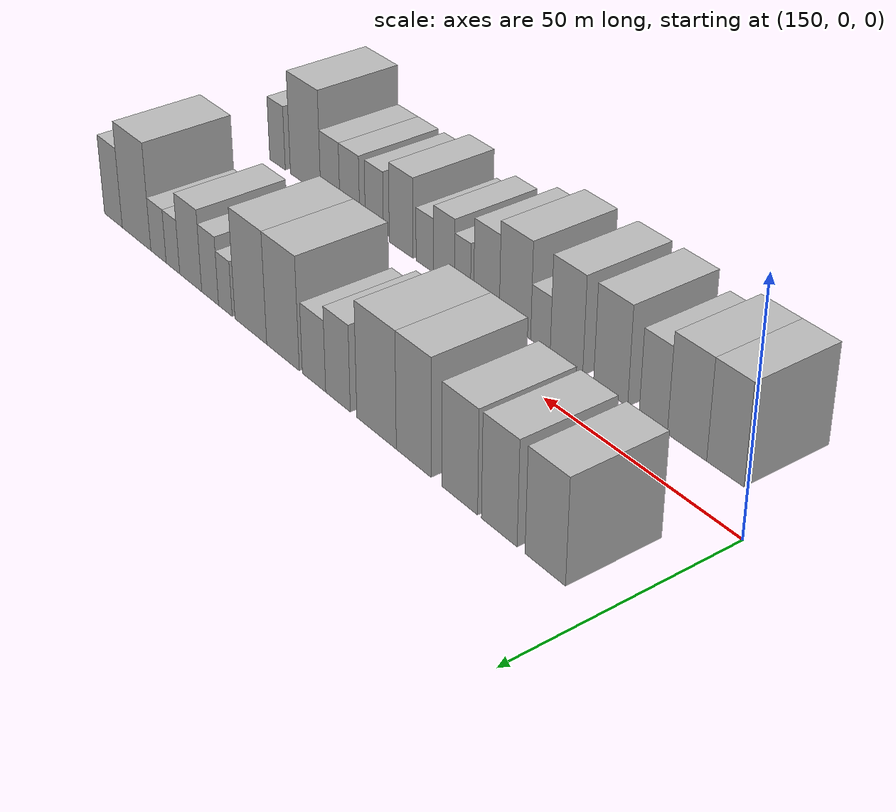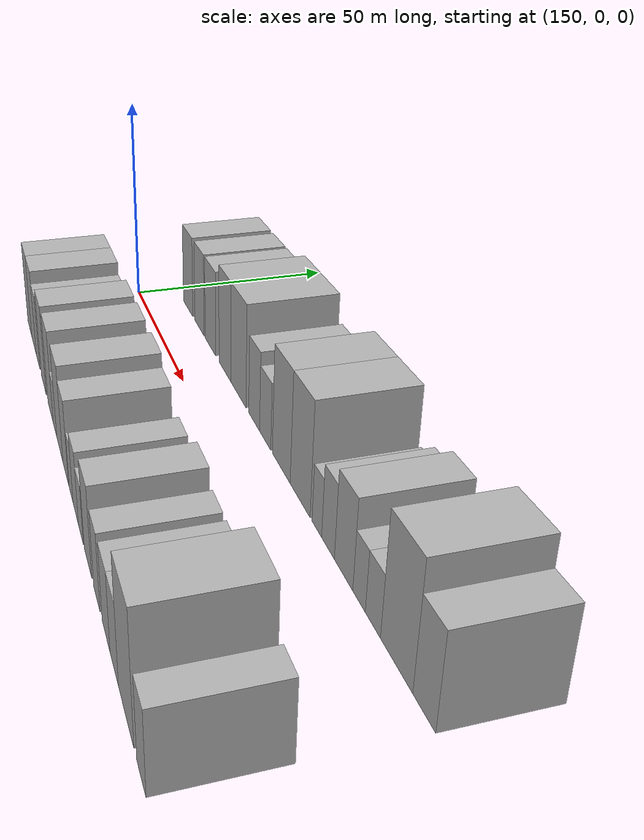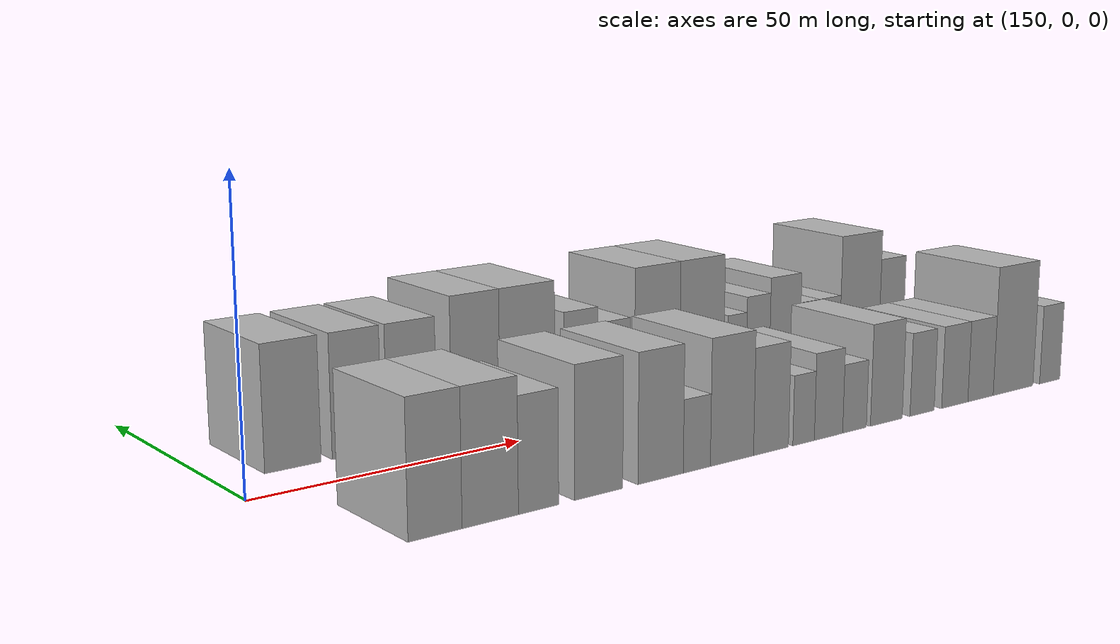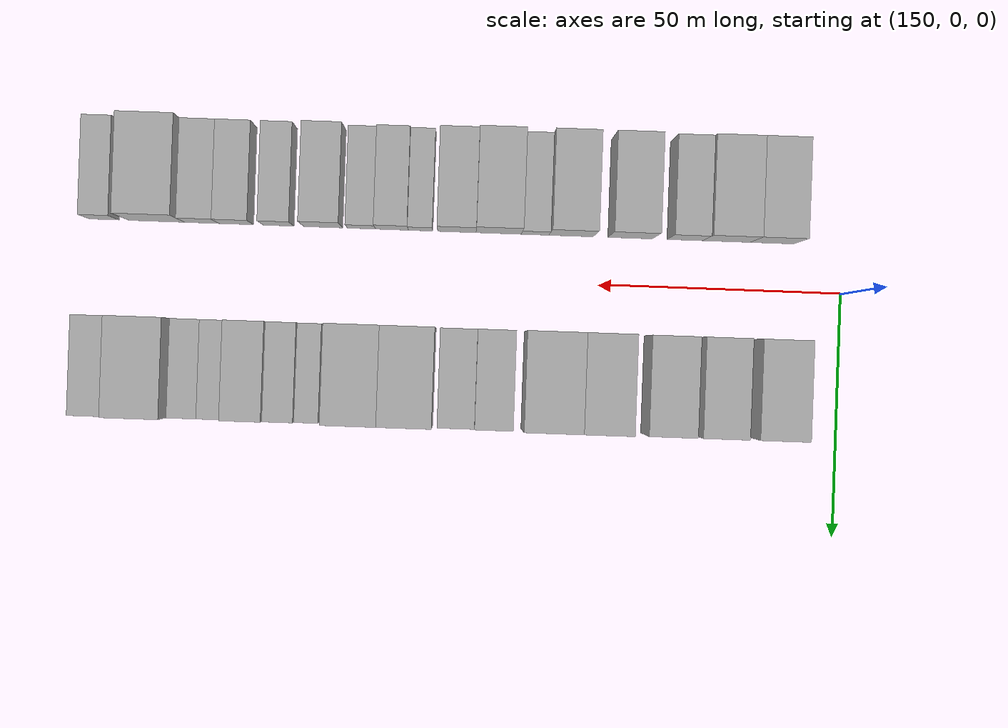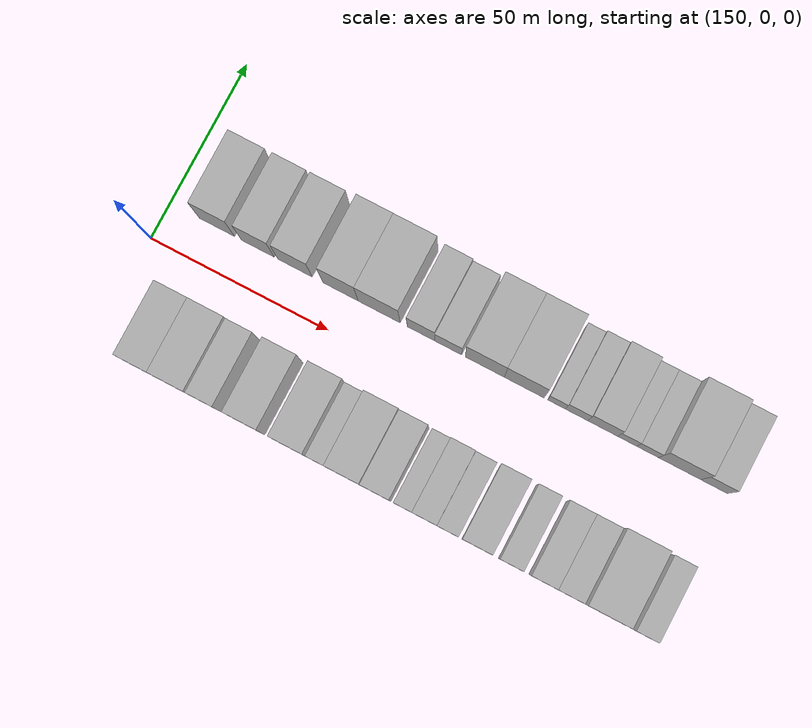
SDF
<sdf version="1.6">
 <world name="default">
  <model name="building_15">
   <static>1</static>
   <pose>163.2316 20.0000 0 0.000000 0.000000 1.570796</pose>
   <link name="link">
    <pose>0 0 10.50 0 0 0</pose>
    <collision name="collision"><geometry><box><size>20.0000 9.9971 21.0000</size></box></geometry></collision>
    <visual name="visual">
     <cast_shadows>0</cast_shadows>
     <geometry><box><size>20.0000 9.9971 21.0000</size></box></geometry>
     <material>
      <script>
       <uri>model://HANNAS_wall/materials/scripts</uri>
       <uri>model://HANNAS_wall/materials/textures</uri>
       <name>vrc/HANNAS_wall</name>
      </script>
     </material>
    </visual>
   </link>
  </model>
  <model name="building_16">
   <static>1</static>
   <pose>174.8527 20.0000 0 0.000000 0.000000 1.570796</pose>
   <link name="link">
    <pose>0 0 10.50 0 0 0</pose>
    <collision name="collision"><geometry><box><size>20.0000 9.2451 21.0000</size></box></geometry></collision>
    <visual name="visual">
     <cast_shadows>0</cast_shadows>
     <geometry><box><size>20.0000 9.2451 21.0000</size></box></geometry>
     <material>
      <script>
       <uri>model://HANNAS_wall/materials/scripts</uri>
       <uri>model://HANNAS_wall/materials/textures</uri>
       <name>vrc/HANNAS_wall</name>
      </script>
     </material>
    </visual>
   </link>
  </model>
  <model name="building_17">
   <static>1</static>
   <pose>185.3069 20.0000 0 0.000000 0.000000 1.570796</pose>
   <link name="link">
    <pose>0 0 10.50 0 0 0</pose>
    <collision name="collision"><geometry><box><size>20.0000 9.6634 21.0000</size></box></geometry></collision>
    <visual name="visual">
     <cast_shadows>0</cast_shadows>
     <geometry><box><size>20.0000 9.6634 21.0000</size></box></geometry>
     <material>
      <script>
       <uri>model://HANNAS_wall/materials/scripts</uri>
       <uri>model://HANNAS_wall/materials/textures</uri>
       <name>vrc/HANNAS_wall</name>
      </script>
     </material>
    </visual>
   </link>
  </model>
  <model name="building_18">
   <static>1</static>
   <pose>198.1085 20.0000 0 0.000000 0.000000 1.570796</pose>
   <link name="link">
    <pose>0 0 12.00 0 0 0</pose>
    <collision name="collision"><geometry><box><size>20.0000 9.9397 24.0000</size></box></geometry></collision>
    <visual name="visual">
     <cast_shadows>0</cast_shadows>
     <geometry><box><size>20.0000 9.9397 24.0000</size></box></geometry>
     <material>
      <script>
       <uri>model://HANNAS_wall/materials/scripts</uri>
       <uri>model://HANNAS_wall/materials/textures</uri>
       <name>vrc/HANNAS_wall</name>
      </script>
     </material>
    </visual>
   </link>
  </model>
  <model name="building_19">
   <static>1</static>
   <pose>208.9604 20.0000 0 0.000000 0.000000 1.570796</pose>
   <link name="link">
    <pose>0 0 12.00 0 0 0</pose>
    <collision name="collision"><geometry><box><size>20.0000 11.7642 24.0000</size></box></geometry></collision>
    <visual name="visual">
     <cast_shadows>0</cast_shadows>
     <geometry><box><size>20.0000 11.7642 24.0000</size></box></geometry>
     <material>
      <script>
       <uri>model://HANNAS_wall/materials/scripts</uri>
       <uri>model://HANNAS_wall/materials/textures</uri>
       <name>vrc/HANNAS_wall</name>
      </script>
     </material>
    </visual>
   </link>
  </model>
  <model name="building_20">
   <static>1</static>
   <pose>220.6789 20.0000 0 0.000000 0.000000 1.570796</pose>
   <link name="link">
    <pose>0 0 9.00 0 0 0</pose>
    <collision name="collision"><geometry><box><size>20.0000 7.6727 18.0000</size></box></geometry></collision>
    <visual name="visual">
     <cast_shadows>0</cast_shadows>
     <geometry><box><size>20.0000 7.6727 18.0000</size></box></geometry>
     <material>
      <script>
       <uri>model://HANNAS_wall/materials/scripts</uri>
       <uri>model://HANNAS_wall/materials/textures</uri>
       <name>vrc/HANNAS_wall</name>
      </script>
     </material>
    </visual>
   </link>
  </model>
  <model name="building_21">
   <static>1</static>
   <pose>228.2584 20.0000 0 0.000000 0.000000 1.570796</pose>
   <link name="link">
    <pose>0 0 7.50 0 0 0</pose>
    <collision name="collision"><geometry><box><size>20.0000 7.4864 15.0000</size></box></geometry></collision>
    <visual name="visual">
     <cast_shadows>0</cast_shadows>
     <geometry><box><size>20.0000 7.4864 15.0000</size></box></geometry>
     <material>
      <script>
       <uri>model://HANNAS_wall/materials/scripts</uri>
       <uri>model://HANNAS_wall/materials/textures</uri>
       <name>vrc/HANNAS_wall</name>
      </script>
     </material>
    </visual>
   </link>
  </model>
  <model name="building_22">
   <static>1</static>
   <pose>238.4389 20.0000 0 0.000000 0.000000 1.570796</pose>
   <link name="link">
    <pose>0 0 12.00 0 0 0</pose>
    <collision name="collision"><geometry><box><size>20.0000 10.8745 24.0000</size></box></geometry></collision>
    <visual name="visual">
     <cast_shadows>0</cast_shadows>
     <geometry><box><size>20.0000 10.8745 24.0000</size></box></geometry>
     <material>
      <script>
       <uri>model://HANNAS_wall/materials/scripts</uri>
       <uri>model://HANNAS_wall/materials/textures</uri>
       <name>vrc/HANNAS_wall</name>
      </script>
     </material>
    </visual>
   </link>
  </model>
  <model name="building_23">
   <static>1</static>
   <pose>249.3946 20.0000 0 0.000000 0.000000 1.570796</pose>
   <link name="link">
    <pose>0 0 12.00 0 0 0</pose>
    <collision name="collision"><geometry><box><size>20.0000 11.0370 24.0000</size></box></geometry></collision>
    <visual name="visual">
     <cast_shadows>0</cast_shadows>
     <geometry><box><size>20.0000 11.0370 24.0000</size></box></geometry>
     <material>
      <script>
       <uri>model://HANNAS_wall/materials/scripts</uri>
       <uri>model://HANNAS_wall/materials/textures</uri>
       <name>vrc/HANNAS_wall</name>
      </script>
     </material>
    </visual>
   </link>
  </model>
  <model name="building_24">
   <static>1</static>
   <pose>258.3579 20.0000 0 0.000000 0.000000 1.570796</pose>
   <link name="link">
    <pose>0 0 6.00 0 0 0</pose>
    <collision name="collision"><geometry><box><size>20.0000 4.8894 12.0000</size></box></geometry></collision>
    <visual name="visual">
     <cast_shadows>0</cast_shadows>
     <geometry><box><size>20.0000 4.8894 12.0000</size></box></geometry>
     <material>
      <script>
       <uri>model://HANNAS_wall/materials/scripts</uri>
       <uri>model://HANNAS_wall/materials/textures</uri>
       <name>vrc/HANNAS_wall</name>
      </script>
     </material>
    </visual>
   </link>
  </model>
  <model name="building_25">
   <static>1</static>
   <pose>263.8838 20.0000 0 0.000000 0.000000 1.570796</pose>
   <link name="link">
    <pose>0 0 7.50 0 0 0</pose>
    <collision name="collision"><geometry><box><size>20.0000 6.1624 15.0000</size></box></geometry></collision>
    <visual name="visual">
     <cast_shadows>0</cast_shadows>
     <geometry><box><size>20.0000 6.1624 15.0000</size></box></geometry>
     <material>
      <script>
       <uri>model://HANNAS_wall/materials/scripts</uri>
       <uri>model://HANNAS_wall/materials/textures</uri>
       <name>vrc/HANNAS_wall</name>
      </script>
     </material>
    </visual>
   </link>
  </model>
  <model name="building_26">
   <static>1</static>
   <pose>271.0997 20.0000 0 0.000000 0.000000 1.570796</pose>
   <link name="link">
    <pose>0 0 9.00 0 0 0</pose>
    <collision name="collision"><geometry><box><size>20.0000 8.2695 18.0000</size></box></geometry></collision>
    <visual name="visual">
     <cast_shadows>0</cast_shadows>
     <geometry><box><size>20.0000 8.2695 18.0000</size></box></geometry>
     <material>
      <script>
       <uri>model://HANNAS_wall/materials/scripts</uri>
       <uri>model://HANNAS_wall/materials/textures</uri>
       <name>vrc/HANNAS_wall</name>
      </script>
     </material>
    </visual>
   </link>
  </model>
  <model name="building_27">
   <static>1</static>
   <pose>277.8459 20.0000 0 0.000000 0.000000 1.570796</pose>
   <link name="link">
    <pose>0 0 6.00 0 0 0</pose>
    <collision name="collision"><geometry><box><size>20.0000 5.2229 12.0000</size></box></geometry></collision>
    <visual name="visual">
     <cast_shadows>0</cast_shadows>
     <geometry><box><size>20.0000 5.2229 12.0000</size></box></geometry>
     <material>
      <script>
       <uri>model://HANNAS_wall/materials/scripts</uri>
       <uri>model://HANNAS_wall/materials/textures</uri>
       <name>vrc/HANNAS_wall</name>
      </script>
     </material>
    </visual>
   </link>
  </model>
  <model name="building_28">
   <static>1</static>
   <pose>283.4523 20.0000 0 0.000000 0.000000 1.570796</pose>
   <link name="link">
    <pose>0 0 6.00 0 0 0</pose>
    <collision name="collision"><geometry><box><size>20.0000 5.9900 12.0000</size></box></geometry></collision>
    <visual name="visual">
     <cast_shadows>0</cast_shadows>
     <geometry><box><size>20.0000 5.9900 12.0000</size></box></geometry>
     <material>
      <script>
       <uri>model://HANNAS_wall/materials/scripts</uri>
       <uri>model://HANNAS_wall/materials/textures</uri>
       <name>vrc/HANNAS_wall</name>
      </script>
     </material>
    </visual>
   </link>
  </model>
  <model name="building_29">
   <static>1</static>
   <pose>292.2314 20.0000 0 0.000000 0.000000 1.570796</pose>
   <link name="link">
    <pose>0 0 12.00 0 0 0</pose>
    <collision name="collision"><geometry><box><size>20.0000 11.5681 24.0000</size></box></geometry></collision>
    <visual name="visual">
     <cast_shadows>0</cast_shadows>
     <geometry><box><size>20.0000 11.5681 24.0000</size></box></geometry>
     <material>
      <script>
       <uri>model://HANNAS_wall/materials/scripts</uri>
       <uri>model://HANNAS_wall/materials/textures</uri>
       <name>vrc/HANNAS_wall</name>
      </script>
     </material>
    </visual>
   </link>
  </model>
  <model name="building_30">
   <static>1</static>
   <pose>301.7068 20.0000 0 0.000000 0.000000 1.570796</pose>
   <link name="link">
    <pose>0 0 9.00 0 0 0</pose>
    <collision name="collision"><geometry><box><size>20.0000 7.3826 18.0000</size></box></geometry></collision>
    <visual name="visual">
     <cast_shadows>0</cast_shadows>
     <geometry><box><size>20.0000 7.3826 18.0000</size></box></geometry>
     <material>
      <script>
       <uri>model://HANNAS_wall/materials/scripts</uri>
       <uri>model://HANNAS_wall/materials/textures</uri>
       <name>vrc/HANNAS_wall</name>
      </script>
     </material>
    </visual>
   </link>
  </model>
  <model name="building_47">
   <static>1</static>
   <pose>164.5350 -20.0000 0 0.000000 0.000000 1.570796</pose>
   <link name="link">
    <pose>0 0 10.50 0 0 0</pose>
    <collision name="collision"><geometry><box><size>20.0000 8.9967 21.0000</size></box></geometry></collision>
    <visual name="visual">
     <cast_shadows>0</cast_shadows>
     <geometry><box><size>20.0000 8.9967 21.0000</size></box></geometry>
     <material>
      <script>
       <uri>model://HANNAS_wall/materials/scripts</uri>
       <uri>model://HANNAS_wall/materials/textures</uri>
       <name>vrc/HANNAS_wall</name>
      </script>
     </material>
    </visual>
   </link>
  </model>
  <model name="building_48">
   <static>1</static>
   <pose>173.9325 -20.0000 0 0.000000 0.000000 1.570796</pose>
   <link name="link">
    <pose>0 0 10.50 0 0 0</pose>
    <collision name="collision"><geometry><box><size>20.0000 9.7983 21.0000</size></box></geometry></collision>
    <visual name="visual">
     <cast_shadows>0</cast_shadows>
     <geometry><box><size>20.0000 9.7983 21.0000</size></box></geometry>
     <material>
      <script>
       <uri>model://HANNAS_wall/materials/scripts</uri>
       <uri>model://HANNAS_wall/materials/textures</uri>
       <name>vrc/HANNAS_wall</name>
      </script>
     </material>
    </visual>
   </link>
  </model>
  <model name="building_49">
   <static>1</static>
   <pose>182.4798 -20.0000 0 0.000000 0.000000 1.570796</pose>
   <link name="link">
    <pose>0 0 9.00 0 0 0</pose>
    <collision name="collision"><geometry><box><size>20.0000 7.2963 18.0000</size></box></geometry></collision>
    <visual name="visual">
     <cast_shadows>0</cast_shadows>
     <geometry><box><size>20.0000 7.2963 18.0000</size></box></geometry>
     <material>
      <script>
       <uri>model://HANNAS_wall/materials/scripts</uri>
       <uri>model://HANNAS_wall/materials/textures</uri>
       <name>vrc/HANNAS_wall</name>
      </script>
     </material>
    </visual>
   </link>
  </model>
  <model name="building_50">
   <static>1</static>
   <pose>193.7291 -20.0000 0 0.000000 0.000000 1.570796</pose>
   <link name="link">
    <pose>0 0 10.50 0 0 0</pose>
    <collision name="collision"><geometry><box><size>20.0000 9.2023 21.0000</size></box></geometry></collision>
    <visual name="visual">
     <cast_shadows>0</cast_shadows>
     <geometry><box><size>20.0000 9.2023 21.0000</size></box></geometry>
     <material>
      <script>
       <uri>model://HANNAS_wall/materials/scripts</uri>
       <uri>model://HANNAS_wall/materials/textures</uri>
       <name>vrc/HANNAS_wall</name>
      </script>
     </material>
    </visual>
   </link>
  </model>
  <model name="building_51">
   <static>1</static>
   <pose>205.9133 -20.0000 0 0.000000 0.000000 1.570796</pose>
   <link name="link">
    <pose>0 0 10.50 0 0 0</pose>
    <collision name="collision"><geometry><box><size>20.0000 9.1662 21.0000</size></box></geometry></collision>
    <visual name="visual">
     <cast_shadows>0</cast_shadows>
     <geometry><box><size>20.0000 9.1662 21.0000</size></box></geometry>
     <material>
      <script>
       <uri>model://HANNAS_wall/materials/scripts</uri>
       <uri>model://HANNAS_wall/materials/textures</uri>
       <name>vrc/HANNAS_wall</name>
      </script>
     </material>
    </visual>
   </link>
  </model>
  <model name="building_52">
   <static>1</static>
   <pose>213.3339 -20.0000 0 0.000000 0.000000 1.570796</pose>
   <link name="link">
    <pose>0 0 6.00 0 0 0</pose>
    <collision name="collision"><geometry><box><size>20.0000 5.6749 12.0000</size></box></geometry></collision>
    <visual name="visual">
     <cast_shadows>0</cast_shadows>
     <geometry><box><size>20.0000 5.6749 12.0000</size></box></geometry>
     <material>
      <script>
       <uri>model://HANNAS_wall/materials/scripts</uri>
       <uri>model://HANNAS_wall/materials/textures</uri>
       <name>vrc/HANNAS_wall</name>
      </script>
     </material>
    </visual>
   </link>
  </model>
  <model name="building_53">
   <static>1</static>
   <pose>220.8471 -20.0000 0 0.000000 0.000000 1.570796</pose>
   <link name="link">
    <pose>0 0 10.50 0 0 0</pose>
    <collision name="collision"><geometry><box><size>20.0000 9.3514 21.0000</size></box></geometry></collision>
    <visual name="visual">
     <cast_shadows>0</cast_shadows>
     <geometry><box><size>20.0000 9.3514 21.0000</size></box></geometry>
     <material>
      <script>
       <uri>model://HANNAS_wall/materials/scripts</uri>
       <uri>model://HANNAS_wall/materials/textures</uri>
       <name>vrc/HANNAS_wall</name>
      </script>
     </material>
    </visual>
   </link>
  </model>
  <model name="building_54">
   <static>1</static>
   <pose>229.4571 -20.0000 0 0.000000 0.000000 1.570796</pose>
   <link name="link">
    <pose>0 0 9.00 0 0 0</pose>
    <collision name="collision"><geometry><box><size>20.0000 7.8686 18.0000</size></box></geometry></collision>
    <visual name="visual">
     <cast_shadows>0</cast_shadows>
     <geometry><box><size>20.0000 7.8686 18.0000</size></box></geometry>
     <material>
      <script>
       <uri>model://HANNAS_wall/materials/scripts</uri>
       <uri>model://HANNAS_wall/materials/textures</uri>
       <name>vrc/HANNAS_wall</name>
      </script>
     </material>
    </visual>
   </link>
  </model>
  <model name="building_55">
   <static>1</static>
   <pose>236.8981 -20.0000 0 0.000000 0.000000 1.570796</pose>
   <link name="link">
    <pose>0 0 6.00 0 0 0</pose>
    <collision name="collision"><geometry><box><size>20.0000 5.0133 12.0000</size></box></geometry></collision>
    <visual name="visual">
     <cast_shadows>0</cast_shadows>
     <geometry><box><size>20.0000 5.0133 12.0000</size></box></geometry>
     <material>
      <script>
       <uri>model://HANNAS_wall/materials/scripts</uri>
       <uri>model://HANNAS_wall/materials/textures</uri>
       <name>vrc/HANNAS_wall</name>
      </script>
     </material>
    </visual>
   </link>
  </model>
  <model name="building_56">
   <static>1</static>
   <pose>242.7785 -20.0000 0 0.000000 0.000000 1.570796</pose>
   <link name="link">
    <pose>0 0 7.50 0 0 0</pose>
    <collision name="collision"><geometry><box><size>20.0000 6.7475 15.0000</size></box></geometry></collision>
    <visual name="visual">
     <cast_shadows>0</cast_shadows>
     <geometry><box><size>20.0000 6.7475 15.0000</size></box></geometry>
     <material>
      <script>
       <uri>model://HANNAS_wall/materials/scripts</uri>
       <uri>model://HANNAS_wall/materials/textures</uri>
       <name>vrc/HANNAS_wall</name>
      </script>
     </material>
    </visual>
   </link>
  </model>
  <model name="building_57">
   <static>1</static>
   <pose>249.0545 -20.0000 0 0.000000 0.000000 1.570796</pose>
   <link name="link">
    <pose>0 0 6.00 0 0 0</pose>
    <collision name="collision"><geometry><box><size>20.0000 5.8046 12.0000</size></box></geometry></collision>
    <visual name="visual">
     <cast_shadows>0</cast_shadows>
     <geometry><box><size>20.0000 5.8046 12.0000</size></box></geometry>
     <material>
      <script>
       <uri>model://HANNAS_wall/materials/scripts</uri>
       <uri>model://HANNAS_wall/materials/textures</uri>
       <name>vrc/HANNAS_wall</name>
      </script>
     </material>
    </visual>
   </link>
  </model>
  <model name="building_58">
   <static>1</static>
   <pose>256.9807 -20.0000 0 0.000000 0.000000 1.570796</pose>
   <link name="link">
    <pose>0 0 9.00 0 0 0</pose>
    <collision name="collision"><geometry><box><size>20.0000 8.0478 18.0000</size></box></geometry></collision>
    <visual name="visual">
     <cast_shadows>0</cast_shadows>
     <geometry><box><size>20.0000 8.0478 18.0000</size></box></geometry>
     <material>
      <script>
       <uri>model://HANNAS_wall/materials/scripts</uri>
       <uri>model://HANNAS_wall/materials/textures</uri>
       <name>vrc/HANNAS_wall</name>
      </script>
     </material>
    </visual>
   </link>
  </model>
  <model name="building_59">
   <static>1</static>
   <pose>266.1766 -20.0000 0 0.000000 0.000000 1.570796</pose>
   <link name="link">
    <pose>0 0 7.50 0 0 0</pose>
    <collision name="collision"><geometry><box><size>20.0000 6.3439 15.0000</size></box></geometry></collision>
    <visual name="visual">
     <cast_shadows>0</cast_shadows>
     <geometry><box><size>20.0000 6.3439 15.0000</size></box></geometry>
     <material>
      <script>
       <uri>model://HANNAS_wall/materials/scripts</uri>
       <uri>model://HANNAS_wall/materials/textures</uri>
       <name>vrc/HANNAS_wall</name>
      </script>
     </material>
    </visual>
   </link>
  </model>
  <model name="building_60">
   <static>1</static>
   <pose>274.9148 -20.0000 0 0.000000 0.000000 1.570796</pose>
   <link name="link">
    <pose>0 0 7.50 0 0 0</pose>
    <collision name="collision"><geometry><box><size>20.0000 7.1326 15.0000</size></box></geometry></collision>
    <visual name="visual">
     <cast_shadows>0</cast_shadows>
     <geometry><box><size>20.0000 7.1326 15.0000</size></box></geometry>
     <material>
      <script>
       <uri>model://HANNAS_wall/materials/scripts</uri>
       <uri>model://HANNAS_wall/materials/textures</uri>
       <name>vrc/HANNAS_wall</name>
      </script>
     </material>
    </visual>
   </link>
  </model>
  <model name="building_61">
   <static>1</static>
   <pose>282.0212 -20.0000 0 0.000000 0.000000 1.570796</pose>
   <link name="link">
    <pose>0 0 7.50 0 0 0</pose>
    <collision name="collision"><geometry><box><size>20.0000 7.0802 15.0000</size></box></geometry></collision>
    <visual name="visual">
     <cast_shadows>0</cast_shadows>
     <geometry><box><size>20.0000 7.0802 15.0000</size></box></geometry>
     <material>
      <script>
       <uri>model://HANNAS_wall/materials/scripts</uri>
       <uri>model://HANNAS_wall/materials/textures</uri>
       <name>vrc/HANNAS_wall</name>
      </script>
     </material>
    </visual>
   </link>
  </model>
  <model name="building_62">
   <static>1</static>
   <pose>291.3152 -20.0000 0 0.000000 0.000000 1.570796</pose>
   <link name="link">
    <pose>0 0 12.00 0 0 0</pose>
    <collision name="collision"><geometry><box><size>20.0000 11.5079 24.0000</size></box></geometry></collision>
    <visual name="visual">
     <cast_shadows>0</cast_shadows>
     <geometry><box><size>20.0000 11.5079 24.0000</size></box></geometry>
     <material>
      <script>
       <uri>model://HANNAS_wall/materials/scripts</uri>
       <uri>model://HANNAS_wall/materials/textures</uri>
       <name>vrc/HANNAS_wall</name>
      </script>
     </material>
    </visual>
   </link>
  </model>
  <model name="building_63">
   <static>1</static>
   <pose>302.1097 -20.0000 0 0.000000 0.000000 1.570796</pose>
   <link name="link">
    <pose>0 0 7.50 0 0 0</pose>
    <collision name="collision"><geometry><box><size>20.0000 6.0811 15.0000</size></box></geometry></collision>
    <visual name="visual">
     <cast_shadows>0</cast_shadows>
     <geometry><box><size>20.0000 6.0811 15.0000</size></box></geometry>
     <material>
      <script>
       <uri>model://HANNAS_wall/materials/scripts</uri>
       <uri>model://HANNAS_wall/materials/textures</uri>
       <name>vrc/HANNAS_wall</name>
      </script>
     </material>
    </visual>
   </link>
  </model>
 </world>
</sdf>
